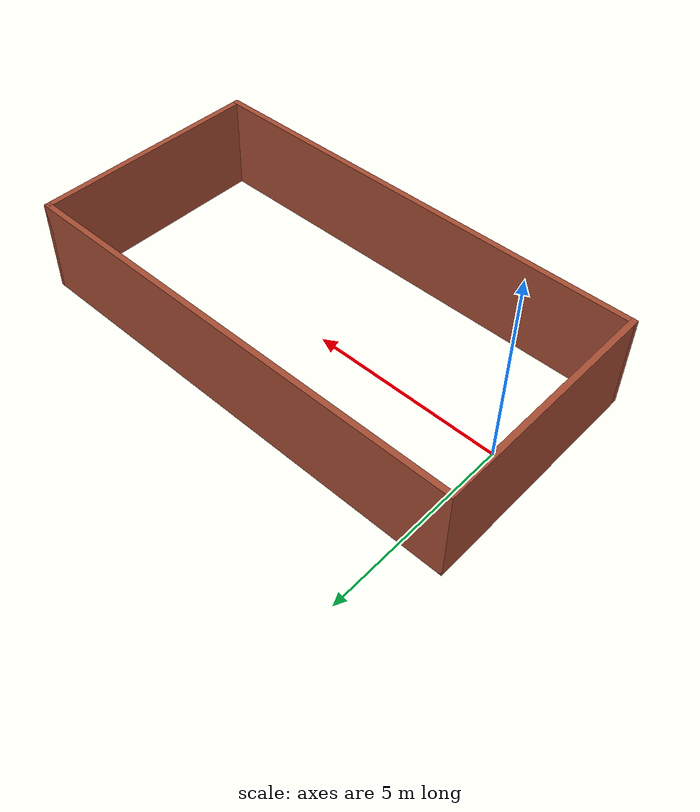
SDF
<?xml version='1.0'?>
<sdf version='1.6'>
  <model name='dep_nav_building1'>
    <pose frame=''>5 -0.0135 0 0 -0 0</pose>
    <link name='Wall_0'>
      <collision name='Wall_0_Collision'>
        <geometry>
          <box>
            <size>12.15 0.15 2.5</size>
          </box>
        </geometry>
        <pose frame=''>0 0 1.25 0 -0 0</pose>
      </collision>
      <visual name='Wall_0_Visual'>
        <pose frame=''>0 0 1.25 0 -0 0</pose>
        <geometry>
          <box>
            <size>12.15 0.15 2.5</size>
          </box>
        </geometry>
        <material>
          <script>
            <uri>file://media/materials/scripts/gazebo.material</uri>
            <name>Gazebo/Bricks</name>
          </script>
          <ambient>1 1 1 1</ambient>
        </material>
        <meta>
          <layer>0</layer>
        </meta>
      </visual>
      <pose frame=''>-0 -3.0135 0 0 -0 0</pose>
    </link>
    <link name='Wall_2'>
      <collision name='Wall_2_Collision'>
        <geometry>
          <box>
            <size>6.177 0.15 2.5</size>
          </box>
        </geometry>
        <pose frame=''>0 0 1.25 0 -0 0</pose>
      </collision>
      <visual name='Wall_2_Visual'>
        <pose frame=''>0 0 1.25 0 -0 0</pose>
        <geometry>
          <box>
            <size>6.177 0.15 2.5</size>
          </box>
        </geometry>
        <material>
          <script>
            <uri>file://media/materials/scripts/gazebo.material</uri>
            <name>Gazebo/Bricks</name>
          </script>
          <ambient>1 1 1 1</ambient>
        </material>
        <meta>
          <layer>0</layer>
        </meta>
      </visual>
      <pose frame=''>-6 -0 0 0 -0 1.5708</pose>
    </link>
    <link name='Wall_4'>
      <collision name='Wall_4_Collision'>
        <geometry>
          <box>
            <size>6.177 0.15 2.5</size>
          </box>
        </geometry>
        <pose frame=''>0 0 1.25 0 -0 0</pose>
      </collision>
      <visual name='Wall_4_Visual'>
        <pose frame=''>0 0 1.25 0 -0 0</pose>
        <geometry>
          <box>
            <size>6.177 0.15 2.5</size>
          </box>
        </geometry>
        <material>
          <script>
            <uri>file://media/materials/scripts/gazebo.material</uri>
            <name>Gazebo/Bricks</name>
          </script>
          <ambient>1 1 1 1</ambient>
        </material>
        <meta>
          <layer>0</layer>
        </meta>
      </visual>
      <pose frame=''>6 -0 0 0 -0 1.5708</pose>
    </link>
    <link name='Wall_6'>
      <collision name='Wall_6_Collision'>
        <geometry>
          <box>
            <size>12.15 0.15 2.5</size>
          </box>
        </geometry>
        <pose frame=''>0 0 1.25 0 -0 0</pose>
      </collision>
      <visual name='Wall_6_Visual'>
        <pose frame=''>0 0 1.25 0 -0 0</pose>
        <geometry>
          <box>
            <size>12.15 0.15 2.5</size>
          </box>
        </geometry>
        <material>
          <script>
            <uri>file://media/materials/scripts/gazebo.material</uri>
            <name>Gazebo/Bricks</name>
          </script>
          <ambient>1 1 1 1</ambient>
        </material>
        <meta>
          <layer>0</layer>
        </meta>
      </visual>
      <pose frame=''>-0 3.0135 0 0 -0 0</pose>
    </link>
    <static>1</static>
  </model>
</sdf>
